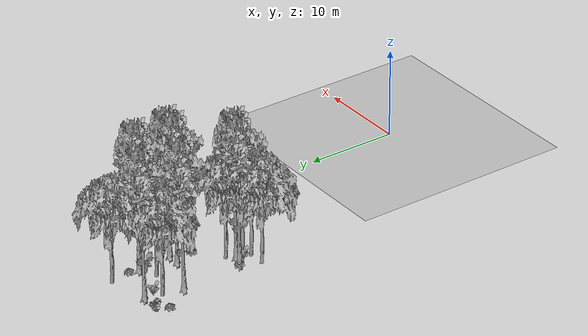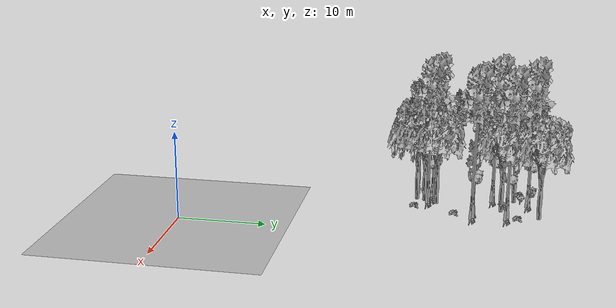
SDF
<sdf version="1.7">
 <world name="default">
  <model name="ground_plane">
   <static>1</static>
   <link name="link">
    <collision name="collision">
     <pose>-50 0 0 0 -0 0</pose>
     <geometry><plane><normal>0 0 1</normal><size>80 80</size></plane></geometry>
     <surface><contact><ode><min_depth>0.01</min_depth><max_vel>0</max_vel></ode></contact></surface>
    </collision>
    <visual name="grass">
     <cast_shadows>0</cast_shadows>
     <geometry>
      <mesh>
       <scale>0.46714285714285714 0.46714285714285714 0.1</scale>
       <uri>file://grass_plane/meshes/grass_plane.dae</uri>
      </mesh>
     </geometry>
    </visual>
   </link>
  </model>
  <model name="Tree 126">
   <static>1</static>
   <pose>-12.148570022427801 34.35255495113584 0 1.57079 -0 0</pose>
   <link name="link">
    <collision name="collision">
     <geometry><mesh><scale>3.5 5 3.5</scale><uri>model://tree_9/meshes/tree_9.obj</uri></mesh></geometry>
    </collision>
    <visual name="visual">
     <geometry><mesh><scale>3.5 5 3.5</scale><uri>model://tree_9/meshes/tree_9.obj</uri></mesh></geometry>
    </visual>
   </link>
  </model>
  <model name="Tree 127">
   <static>1</static>
   <pose>-10.18913969504381 27.96829850010228 0 1.57079 -0 0</pose>
   <link name="link">
    <collision name="collision">
     <geometry><mesh><scale>3.5 5 3.5</scale><uri>model://tree_2/meshes/tree_2.obj</uri></mesh></geometry>
    </collision>
    <visual name="visual">
     <geometry><mesh><scale>3.5 5 3.5</scale><uri>model://tree_2/meshes/tree_2.obj</uri></mesh></geometry>
    </visual>
   </link>
  </model>
  <model name="Tree 142">
   <static>1</static>
   <pose>-6.692369701506742 35.994329834088944 0 1.57079 -0 0</pose>
   <link name="link">
    <collision name="collision">
     <geometry><mesh><scale>3.5 5 3.5</scale><uri>model://tree_9/meshes/tree_9.obj</uri></mesh></geometry>
    </collision>
    <visual name="visual">
     <geometry><mesh><scale>3.5 5 3.5</scale><uri>model://tree_9/meshes/tree_9.obj</uri></mesh></geometry>
    </visual>
   </link>
  </model>
  <model name="Tree 144">
   <static>1</static>
   <pose>-7.387653282777215 39.52867319165921 0 1.57079 -0 0</pose>
   <link name="link">
    <collision name="collision">
     <geometry><mesh><scale>3.5 5 3.5</scale><uri>model://tree_2/meshes/tree_2.obj</uri></mesh></geometry>
    </collision>
    <visual name="visual">
     <geometry><mesh><scale>3.5 5 3.5</scale><uri>model://tree_2/meshes/tree_2.obj</uri></mesh></geometry>
    </visual>
   </link>
  </model>
  <model name="Tree 156">
   <static>1</static>
   <pose>-7.760492883780628 32.215996705989596 0 1.57079 -0 0</pose>
   <link name="link">
    <collision name="collision">
     <geometry><mesh><scale>3.5 5 3.5</scale><uri>model://tree_9/meshes/tree_9.obj</uri></mesh></geometry>
    </collision>
    <visual name="visual">
     <geometry><mesh><scale>3.5 5 3.5</scale><uri>model://tree_9/meshes/tree_9.obj</uri></mesh></geometry>
    </visual>
   </link>
  </model>
  <model name="Tree 251">
   <static>1</static>
   <pose>-10.423244260830383 26.978108194849398 0 1.57079 -0 0</pose>
   <link name="link">
    <collision name="collision">
     <geometry><mesh><scale>3.5 5 3.5</scale><uri>model://tree_9/meshes/tree_9.obj</uri></mesh></geometry>
    </collision>
    <visual name="visual">
     <geometry><mesh><scale>3.5 5 3.5</scale><uri>model://tree_9/meshes/tree_9.obj</uri></mesh></geometry>
    </visual>
   </link>
  </model>
  <model name="Tree 339">
   <static>1</static>
   <pose>-6.364372903941643 32.16773496183227 0 1.57079 -0 0</pose>
   <link name="link">
    <collision name="collision">
     <geometry><mesh><scale>3.5 5 3.5</scale><uri>model://tree_9/meshes/tree_9.obj</uri></mesh></geometry>
    </collision>
    <visual name="visual">
     <geometry><mesh><scale>3.5 5 3.5</scale><uri>model://tree_9/meshes/tree_9.obj</uri></mesh></geometry>
    </visual>
   </link>
  </model>
  <model name="Tree 341">
   <static>1</static>
   <pose>-10.983452125447197 26.523034118882805 0 1.57079 -0 0</pose>
   <link name="link">
    <collision name="collision">
     <geometry><mesh><scale>3.5 5 3.5</scale><uri>model://tree_2/meshes/tree_2.obj</uri></mesh></geometry>
    </collision>
    <visual name="visual">
     <geometry><mesh><scale>3.5 5 3.5</scale><uri>model://tree_2/meshes/tree_2.obj</uri></mesh></geometry>
    </visual>
   </link>
  </model>
  <model name="Tree 415">
   <static>1</static>
   <pose>-13.0323154379902 25.595691321327493 0 1.57079 -0 0</pose>
   <link name="link">
    <collision name="collision">
     <geometry><mesh><scale>3.5 5 3.5</scale><uri>model://tree_2/meshes/tree_2.obj</uri></mesh></geometry>
    </collision>
    <visual name="visual">
     <geometry><mesh><scale>3.5 5 3.5</scale><uri>model://tree_2/meshes/tree_2.obj</uri></mesh></geometry>
    </visual>
   </link>
  </model>
  <model name="Tree 491">
   <static>1</static>
   <pose>-11.276970504519845 25.646662613281777 0 1.57079 -0 0</pose>
   <link name="link">
    <collision name="collision">
     <geometry><mesh><scale>3.5 5 3.5</scale><uri>model://tree_2/meshes/tree_2.obj</uri></mesh></geometry>
    </collision>
    <visual name="visual">
     <geometry><mesh><scale>3.5 5 3.5</scale><uri>model://tree_2/meshes/tree_2.obj</uri></mesh></geometry>
    </visual>
   </link>
  </model>
  <model name="Tree 528">
   <static>1</static>
   <pose>-12.171237549782045 36.77958041008472 0 1.57079 -0 0</pose>
   <link name="link">
    <collision name="collision">
     <geometry><mesh><scale>3.5 5 3.5</scale><uri>model://tree_2/meshes/tree_2.obj</uri></mesh></geometry>
    </collision>
    <visual name="visual">
     <geometry><mesh><scale>3.5 5 3.5</scale><uri>model://tree_2/meshes/tree_2.obj</uri></mesh></geometry>
    </visual>
   </link>
  </model>
  <model name="Tree 596">
   <static>1</static>
   <pose>-11.31449957219661 38.38397697693124 0 1.57079 -0 0</pose>
   <link name="link">
    <collision name="collision">
     <geometry><mesh><scale>3.5 5 3.5</scale><uri>model://tree_9/meshes/tree_9.obj</uri></mesh></geometry>
    </collision>
    <visual name="visual">
     <geometry><mesh><scale>3.5 5 3.5</scale><uri>model://tree_9/meshes/tree_9.obj</uri></mesh></geometry>
    </visual>
   </link>
  </model>
  <model name="Tree 632">
   <static>1</static>
   <pose>-8.931903021971504 35.33475941284645 0 1.57079 -0 0</pose>
   <link name="link">
    <collision name="collision">
     <geometry><mesh><scale>3.5 5 3.5</scale><uri>model://tree_2/meshes/tree_2.obj</uri></mesh></geometry>
    </collision>
    <visual name="visual">
     <geometry><mesh><scale>3.5 5 3.5</scale><uri>model://tree_2/meshes/tree_2.obj</uri></mesh></geometry>
    </visual>
   </link>
  </model>
  <model name="Tree 639">
   <static>1</static>
   <pose>-11.725817506587724 27.450734267988096 0 1.57079 -0 0</pose>
   <link name="link">
    <collision name="collision">
     <geometry><mesh><scale>3.5 5 3.5</scale><uri>model://tree_9/meshes/tree_9.obj</uri></mesh></geometry>
    </collision>
    <visual name="visual">
     <geometry><mesh><scale>3.5 5 3.5</scale><uri>model://tree_9/meshes/tree_9.obj</uri></mesh></geometry>
    </visual>
   </link>
  </model>
  <model name="Bush 55">
   <static>1</static>
   <pose>-7.742145258845394 35.81192538072354 0 1.57079 -0 0</pose>
   <link name="link">
    <collision name="collision">
     <geometry><mesh><scale>2 2 2</scale><uri>model://bush_5/meshes/bush_5.obj</uri></mesh></geometry>
     <surface><contact><collide_without_contact>false</collide_without_contact></contact></surface>
    </collision>
    <visual name="visual">
     <geometry><mesh><scale>2 2 2</scale><uri>model://bush_5/meshes/bush_5.obj</uri></mesh></geometry>
    </visual>
   </link>
  </model>
  <model name="Bush 88">
   <static>1</static>
   <pose>-14.413467265790644 37.40844029614914 0 1.57079 -0 0</pose>
   <link name="link">
    <collision name="collision">
     <geometry><mesh><scale>2 2 2</scale><uri>model://bush_2/meshes/bush_2.obj</uri></mesh></geometry>
     <surface><contact><collide_without_contact>false</collide_without_contact></contact></surface>
    </collision>
    <visual name="visual">
     <geometry><mesh><scale>2 2 2</scale><uri>model://bush_2/meshes/bush_2.obj</uri></mesh></geometry>
    </visual>
   </link>
  </model>
  <model name="Bush 389">
   <static>1</static>
   <pose>-11.55369461045633 37.52449981306522 0 1.57079 -0 0</pose>
   <link name="link">
    <collision name="collision">
     <geometry><mesh><scale>2 2 2</scale><uri>model://bush_0/meshes/bush_0.obj</uri></mesh></geometry>
     <surface><contact><collide_without_contact>false</collide_without_contact></contact></surface>
    </collision>
    <visual name="visual">
     <geometry><mesh><scale>2 2 2</scale><uri>model://bush_0/meshes/bush_0.obj</uri></mesh></geometry>
    </visual>
   </link>
  </model>
  <model name="Bush 425">
   <static>1</static>
   <pose>-8.939797145713722 25.498548793082676 0 1.57079 -0 0</pose>
   <link name="link">
    <collision name="collision">
     <geometry><mesh><scale>2 2 2</scale><uri>model://bush_2/meshes/bush_2.obj</uri></mesh></geometry>
     <surface><contact><collide_without_contact>false</collide_without_contact></contact></surface>
    </collision>
    <visual name="visual">
     <geometry><mesh><scale>2 2 2</scale><uri>model://bush_2/meshes/bush_2.obj</uri></mesh></geometry>
    </visual>
   </link>
  </model>
  <model name="Bush 437">
   <static>1</static>
   <pose>-11.933195307765097 27.524792702868922 0 1.57079 -0 0</pose>
   <link name="link">
    <collision name="collision">
     <geometry><mesh><scale>2 2 2</scale><uri>model://bush_2/meshes/bush_2.obj</uri></mesh></geometry>
     <surface><contact><collide_without_contact>false</collide_without_contact></contact></surface>
    </collision>
    <visual name="visual">
     <geometry><mesh><scale>2 2 2</scale><uri>model://bush_2/meshes/bush_2.obj</uri></mesh></geometry>
    </visual>
   </link>
  </model>
  <model name="Bush 524">
   <static>1</static>
   <pose>-11.407545617466749 26.763653526461837 0 1.57079 -0 0</pose>
   <link name="link">
    <collision name="collision">
     <geometry><mesh><scale>2 2 2</scale><uri>model://bush_0/meshes/bush_0.obj</uri></mesh></geometry>
     <surface><contact><collide_without_contact>false</collide_without_contact></contact></surface>
    </collision>
    <visual name="visual">
     <geometry><mesh><scale>2 2 2</scale><uri>model://bush_0/meshes/bush_0.obj</uri></mesh></geometry>
    </visual>
   </link>
  </model>
  <model name="Bush 530">
   <static>1</static>
   <pose>-14.099808571722459 38.84369811644628 0 1.57079 -0 0</pose>
   <link name="link">
    <collision name="collision">
     <geometry><mesh><scale>2 2 2</scale><uri>model://bush_4/meshes/bush_4.obj</uri></mesh></geometry>
     <surface><contact><collide_without_contact>false</collide_without_contact></contact></surface>
    </collision>
    <visual name="visual">
     <geometry><mesh><scale>2 2 2</scale><uri>model://bush_4/meshes/bush_4.obj</uri></mesh></geometry>
    </visual>
   </link>
  </model>
  <model name="Bush 567">
   <static>1</static>
   <pose>-7.31154878172396 30.109700745962073 0 1.57079 -0 0</pose>
   <link name="link">
    <collision name="collision">
     <geometry><mesh><scale>2 2 2</scale><uri>model://bush_2/meshes/bush_2.obj</uri></mesh></geometry>
     <surface><contact><collide_without_contact>false</collide_without_contact></contact></surface>
    </collision>
    <visual name="visual">
     <geometry><mesh><scale>2 2 2</scale><uri>model://bush_2/meshes/bush_2.obj</uri></mesh></geometry>
    </visual>
   </link>
  </model>
  <model name="Bush 597">
   <static>1</static>
   <pose>-6.810393080450105 37.19764133944787 0 1.57079 -0 0</pose>
   <link name="link">
    <collision name="collision">
     <geometry><mesh><scale>2 2 2</scale><uri>model://bush_2/meshes/bush_2.obj</uri></mesh></geometry>
     <surface><contact><collide_without_contact>false</collide_without_contact></contact></surface>
    </collision>
    <visual name="visual">
     <geometry><mesh><scale>2 2 2</scale><uri>model://bush_2/meshes/bush_2.obj</uri></mesh></geometry>
    </visual>
   </link>
  </model>
 </world>
</sdf>
